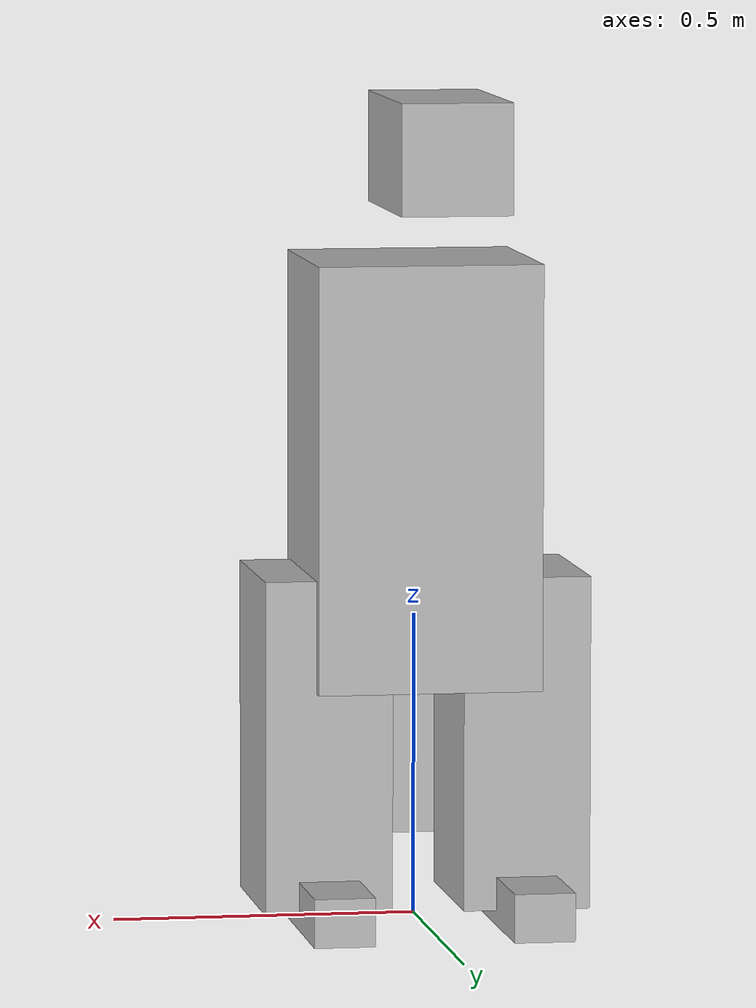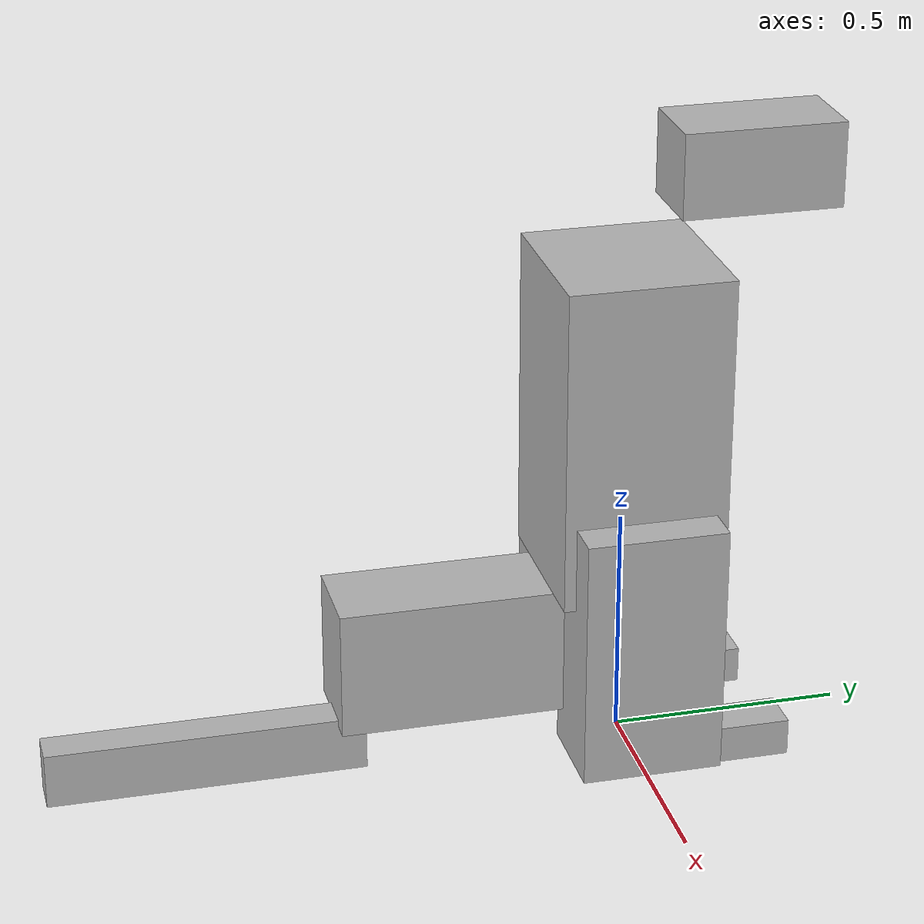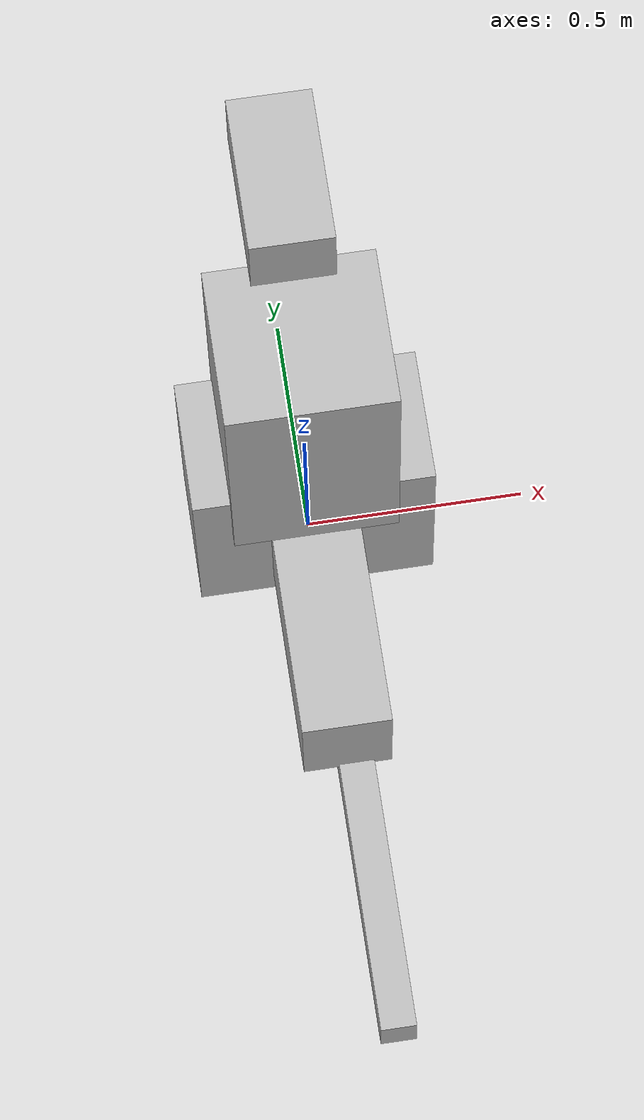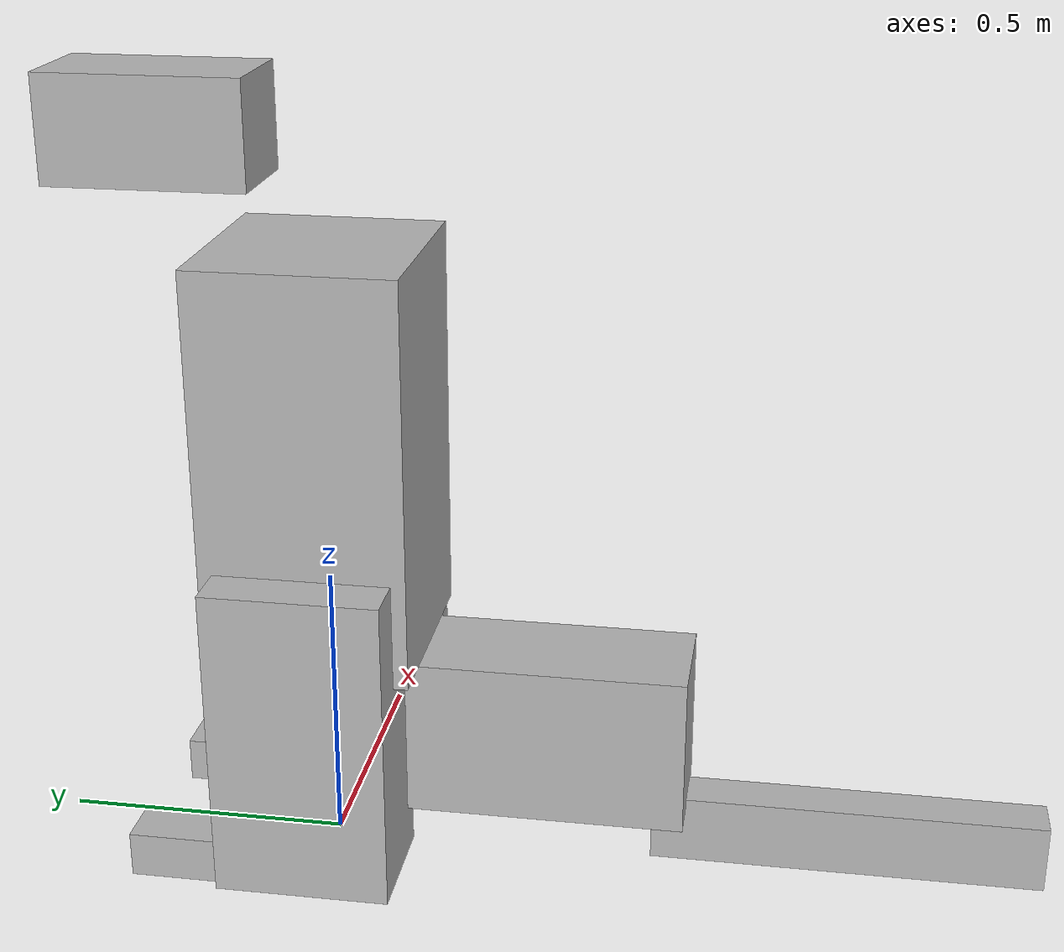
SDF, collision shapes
<?xml version='1.0' encoding='utf-8'?>
<sdf version="1.8">
  <model name="kangaroo">
    <static>false</static>
    <link name="body">
      <inertial>
        <pose>0 0 0.7 0 0 0</pose>
        <mass>40</mass>
        <inertia>
          <ixx>8.67</ixx>
          <iyy>7.07</iyy>
          <izz>2.67</izz>
          <ixy>0</ixy>
          <ixz>0</ixz>
          <iyz>0</iyz>
        </inertia>
      </inertial>
      <visual name="animal_visual">
        <geometry>
          <mesh>
            <uri>model://kangaroo/meshes/kangaroo.dae</uri>
            <scale>1 1 1</scale>
          </mesh>
        </geometry>
      </visual>
      <collision name="torso">
        <pose>0 0 0.74 0 0 0</pose>
        <geometry>
          <box>
            <size>0.37 0.35 0.7</size>
          </box>
        </geometry>
      </collision>
      <collision name="head">
        <pose>0 0.255 1.28 0 0 0</pose>
        <geometry>
          <box>
            <size>0.18 0.34 0.18</size>
          </box>
        </geometry>
      </collision>
      <collision name="tail_base">
        <pose>0 -0.39 0.25 0 0 0</pose>
        <geometry>
          <box>
            <size>0.2 0.48 0.28</size>
          </box>
        </geometry>
      </collision>
      <collision name="tail_tip">
        <pose>0.02 -0.91 0.065 0 0 0</pose>
        <geometry>
          <box>
            <size>0.08 0.68 0.12</size>
          </box>
        </geometry>
      </collision>
      <collision name="leg_-1">
        <pose>-0.164 0 0.3 0 0 0</pose>
        <geometry>
          <box>
            <size>0.21 0.3 0.55</size>
          </box>
        </geometry>
      </collision>
      <collision name="foot_-1">
        <pose>-0.164 0.12 0.04 0 0 0</pose>
        <geometry>
          <box>
            <size>0.1 0.4 0.08</size>
          </box>
        </geometry>
      </collision>
      <collision name="leg_1">
        <pose>0.164 0 0.3 0 0 0</pose>
        <geometry>
          <box>
            <size>0.21 0.3 0.55</size>
          </box>
        </geometry>
      </collision>
      <collision name="foot_1">
        <pose>0.164 0.12 0.04 0 0 0</pose>
        <geometry>
          <box>
            <size>0.1 0.4 0.08</size>
          </box>
        </geometry>
      </collision>
    </link>
  </model>
</sdf>
